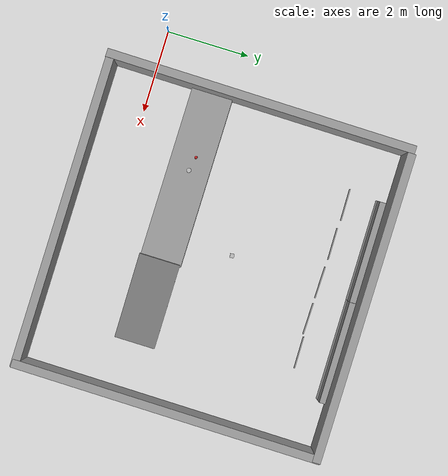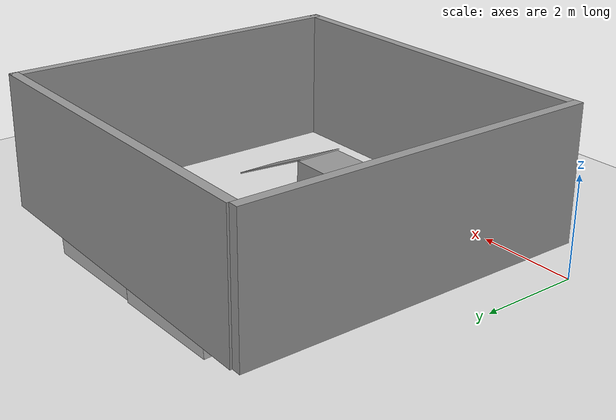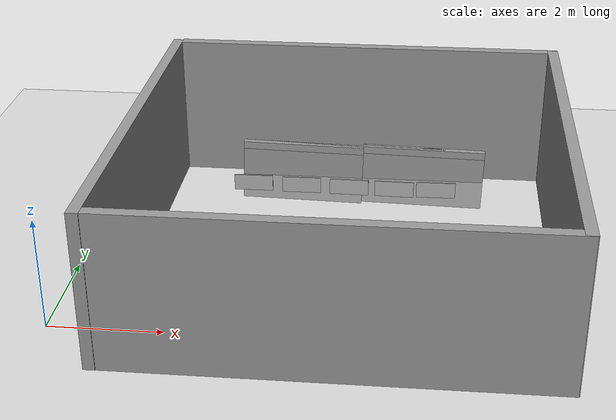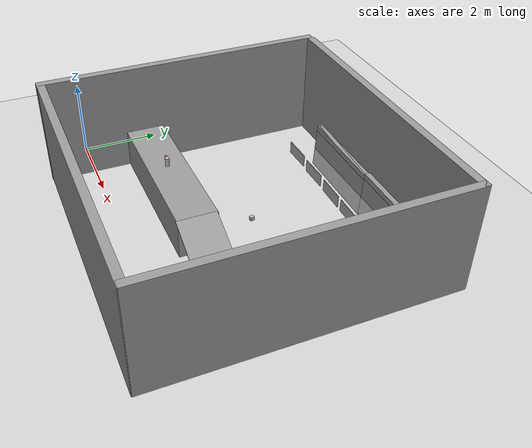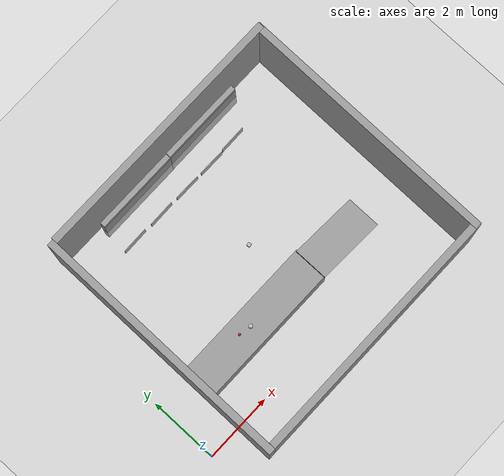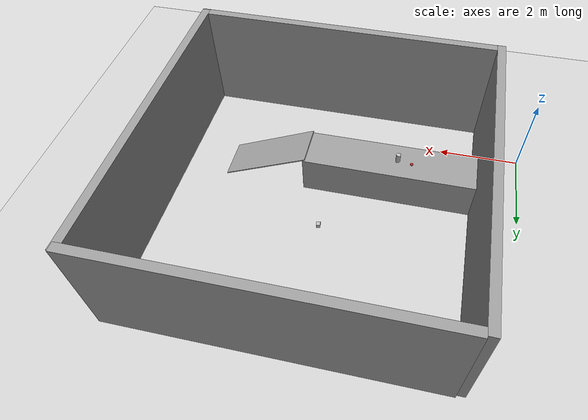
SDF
<sdf version="1.7">
 <world name="default">
  <light name="sun" type="directional">
   <pose>0 0 10 0 -0 0</pose>
   <diffuse>0.8 0.8 0.8 1</diffuse>
   <specular>0.2 0.2 0.2 1</specular>
   <attenuation>
    <range>1000</range>
    <constant>0.9</constant>
    <linear>0.01</linear>
    <quadratic>0.001</quadratic>
   </attenuation>
   <direction>-0.5 0.1 -0.9</direction>
   <spot><inner_angle>0</inner_angle><outer_angle>0</outer_angle><falloff>0</falloff></spot>
  </light>
  <model name="ground_plane">
   <static>1</static>
   <link name="link">
    <collision name="collision">
     <geometry><plane><normal>0 0 1</normal><size>100 100</size></plane></geometry>
     <surface><friction><ode><mu>100</mu><mu2>50</mu2></ode></friction></surface>
    </collision>
    <visual name="visual">
     <cast_shadows>0</cast_shadows>
     <geometry><plane><normal>0 0 1</normal><size>100 100</size></plane></geometry>
     <material>
      <script><uri>file://media/materials/scripts/gazebo.material</uri><name>Gazebo/Grey</name></script>
     </material>
    </visual>
   </link>
  </model>
  <gravity>0 0 -9.8</gravity>
  <magnetic_field>6e-06 2.3e-05 -4.2e-05</magnetic_field>
  <atmosphere type="adiabatic"/>
  <physics type="ode">
   <max_step_size>0.001</max_step_size>
   <real_time_factor>1</real_time_factor>
   <real_time_update_rate>1000</real_time_update_rate>
  </physics>
  <scene><ambient>0.4 0.4 0.4 1</ambient><background>0.7 0.7 0.7 1</background><shadows>1</shadows></scene>
  <audio><device>default</device></audio>
  <spherical_coordinates>
   <surface_model>EARTH_WGS84</surface_model>
   <latitude_deg>0</latitude_deg>
   <longitude_deg>0</longitude_deg>
   <elevation>0</elevation>
   <heading_deg>0</heading_deg>
  </spherical_coordinates>
  <model name="beer">
   <link name="link">
    <pose>0 0 0.115 0 -0 0</pose>
    <inertial>
     <mass>0.39</mass>
     <inertia><ixx>0.00058</ixx><ixy>0</ixy><ixz>0</ixz><iyy>0.00058</iyy><iyz>0</iyz><izz>0.00019</izz></inertia>
    </inertial>
    <collision name="collision">
     <geometry><cylinder><radius>0.055</radius><length>0.23</length></cylinder></geometry>
    </collision>
    <visual name="visual">
     <geometry><cylinder><radius>0.055</radius><length>0.23</length></cylinder></geometry>
     <material>
      <script>
       <uri>model://beer/materials/scripts</uri>
       <uri>model://beer/materials/textures</uri>
       <name>Beer/Diffuse</name>
      </script>
     </material>
    </visual>
   </link>
   <pose>3.05932 1.46997 1 -5.8e-05 -2.8e-05 2.5442</pose>
  </model>
  <model name="cricket_ball">
   <link name="link">
    <pose>0 0 0.0375 0 -0 0</pose>
    <inertial>
     <mass>0.1467</mass>
     <inertia>
      <ixx>8.25187e-05</ixx>
      <ixy>0</ixy>
      <ixz>0</ixz>
      <iyy>8.25187e-05</iyy>
      <iyz>0</iyz>
      <izz>8.25187e-05</izz>
     </inertia>
    </inertial>
    <collision name="collision">
     <geometry><sphere><radius>0.0375</radius></sphere></geometry>
     <surface>
      <contact>
       <poissons_ratio>0.347</poissons_ratio>
       <elastic_modulus>8.8e+09</elastic_modulus>
       <ode><kp>100000</kp><kd>100</kd><max_vel>100</max_vel><min_depth>0.001</min_depth></ode>
      </contact>
      <friction>
       <torsional>
        <coefficient>1</coefficient>
        <use_patch_radius>0</use_patch_radius>
        <surface_radius>0.01</surface_radius>
       </torsional>
      </friction>
     </surface>
    </collision>
    <visual name="visual">
     <geometry><sphere><radius>0.0375</radius></sphere></geometry>
     <material>
      <script><uri>file://media/materials/scripts/gazebo.material</uri><name>Gazebo/Red</name></script>
     </material>
    </visual>
    <velocity_decay><linear>0</linear><angular>0.005</angular></velocity_decay>
   </link>
   <pose>2.72731 1.5638 1.06393 2.39338 -0.27562 -0.706928</pose>
  </model>
  <model name="label_wall_0">
   <pose>2.3839 7.82373 0.019778 -2.10118 1.52018 -2.09374</pose>
   <link name="Wall_0">
    <collision name="Wall_0_Collision">
     <geometry><box><size>1.25 0.15 2.5</size></box></geometry>
     <pose>0 0 1.25 0 -0 0</pose>
    </collision>
    <visual name="Wall_0_Visual">
     <pose>0 0 1.25 0 -0 0</pose>
     <geometry><box><size>1.25 0.15 2.5</size></box></geometry>
     <material>
      <script><uri>file://media/materials/scripts/gazebo.material</uri><name>Gazebo/Grey</name></script>
      <ambient>1 1 1 1</ambient>
     </material>
     <meta><layer>0</layer></meta>
    </visual>
    <pose>-0 -1.7475 0 0 -0 3.14159</pose>
   </link>
   <link name="Wall_1">
    <collision name="Wall_1_Collision">
     <geometry><box><size>0.15 0.15 2.5</size></box></geometry>
     <pose>0 0 1.25 0 -0 0</pose>
    </collision>
    <visual name="Wall_1_Visual">
     <pose>0 0 1.25 0 -0 0</pose>
     <geometry><box><size>0.15 0.15 2.5</size></box></geometry>
     <material>
      <script><uri>file://media/materials/scripts/gazebo.material</uri><name>Gazebo/Grey</name></script>
      <ambient>1 1 1 1</ambient>
     </material>
     <meta><layer>0</layer></meta>
    </visual>
    <pose>-0.55 -1.7475 0 0 -0 0</pose>
   </link>
   <static>1</static>
  </model>
  <model name="grey_wall">
   <static>1</static>
   <link name="link">
    <pose>0 0 1.4 0 -0 0</pose>
    <collision name="collision"><geometry><box><size>7.5 0.2 2.8</size></box></geometry></collision>
    <visual name="visual">
     <cast_shadows>0</cast_shadows>
     <geometry><box><size>7.5 0.2 2.8</size></box></geometry>
     <material>
      <script>
       <uri>model://grey_wall/materials/scripts</uri>
       <uri>model://grey_wall/materials/textures</uri>
       <name>vrc/grey_wall</name>
      </script>
     </material>
    </visual>
   </link>
   <pose>4.93932 6.31191 0 0 -0 0</pose>
  </model>
  <model name="camera">
   <pose>4.68664 3.05018 0.049994 3.2e-05 -2.9e-05 1.70775</pose>
   <link name="link">
    <inertial>
     <mass>0.1</mass>
     <inertia>
      <ixx>0.000166667</ixx>
      <iyy>0.000166667</iyy>
      <izz>0.000166667</izz>
      <ixy>0</ixy>
      <ixz>0</ixz>
      <iyz>0</iyz>
     </inertia>
    </inertial>
    <collision name="collision"><geometry><box><size>0.1 0.1 0.1</size></box></geometry></collision>
    <visual name="visual"><geometry><box><size>0.1 0.1 0.1</size></box></geometry></visual>
    <sensor name="camera" type="camera">
     <camera>
      <horizontal_fov>1.047</horizontal_fov>
      <image><width>320</width><height>240</height></image>
      <clip><near>0.1</near><far>100</far></clip>
     </camera>
     <always_on>1</always_on>
     <update_rate>30</update_rate>
     <visualize>1</visualize>
     <plugin name="camera_controller" filename="libgazebo_ros_camera.so">
      <robotNamespace>/custom_robot</robotNamespace>
      <camera_name>custom_camera</camera_name>
      <image_topic_name>camera/image_raw</image_topic_name>
      <camera_info_topic_name>camera/camera_info</camera_info_topic_name>
     </plugin>
    </sensor>
   </link>
  </model>
  <model name="table_0">
   <link name="link_2">
    <inertial>
     <mass>4.15649</mass>
     <inertia><ixx>0.692749</ixx><ixy>0</ixy><ixz>0</ixz><iyy>6.3305</iyy><iyz>0</iyz><izz>6.3305</izz></inertia>
    </inertial>
    <pose>-1.53849 0.013601 -0.012814 0 -0 0</pose>
    <visual name="visual">
     <geometry><box><size>4.15649 1 1</size></box></geometry>
     <material>
      <lighting>1</lighting>
      <script><uri>file://media/materials/scripts/gazebo.material</uri><name>Gazebo/Grey</name></script>
      <shader type="pixel"/>
      <emissive>0 0 0 1</emissive>
     </material>
    </visual>
    <collision name="collision">
     <geometry><box><size>4.15649 1 1</size></box></geometry>
     <surface>
      <friction>
       <ode><mu>1</mu><mu2>1</mu2><fdir1>0 0 0</fdir1><slip1>0</slip1><slip2>0</slip2></ode>
       <torsional>
        <coefficient>1</coefficient>
        <patch_radius>0</patch_radius>
        <surface_radius>0</surface_radius>
        <use_patch_radius>1</use_patch_radius>
        <ode><slip>0</slip></ode>
       </torsional>
      </friction>
      <bounce><restitution_coefficient>0</restitution_coefficient><threshold>1e+06</threshold></bounce>
      <contact>
       <collide_without_contact>0</collide_without_contact>
       <collide_without_contact_bitmask>1</collide_without_contact_bitmask>
       <collide_bitmask>1</collide_bitmask>
       <ode>
        <soft_cfm>0</soft_cfm>
        <soft_erp>0.2</soft_erp>
        <kp>1e+13</kp>
        <kd>1</kd>
        <max_vel>0.01</max_vel>
        <min_depth>0</min_depth>
       </ode>
       <bullet>
        <split_impulse>1</split_impulse>
        <split_impulse_penetration_threshold>-0.01</split_impulse_penetration_threshold>
        <soft_cfm>0</soft_cfm>
        <soft_erp>0.2</soft_erp>
        <kp>1e+13</kp>
        <kd>1</kd>
       </bullet>
      </contact>
     </surface>
    </collision>
   </link>
   <link name="link_3">
    <inertial>
     <mass>0.064214</mass>
     <inertia>
      <ixx>0.00535527</ixx>
      <ixy>0</ixy>
      <ixz>0</ixz>
      <iyy>0.0289084</iyy>
      <iyz>0</iyz>
      <izz>0.0342555</izz>
     </inertia>
    </inertial>
    <pose>1.53849 -0.013605 0.012814 0 0.440179 0</pose>
    <visual name="visual">
     <geometry><box><size>2.32411 1 0.027691</size></box></geometry>
     <material>
      <lighting>1</lighting>
      <script><uri>file://media/materials/scripts/gazebo.material</uri><name>Gazebo/Grey</name></script>
      <shader type="pixel"/>
      <emissive>0 0 0 1</emissive>
     </material>
    </visual>
    <collision name="collision">
     <geometry><box><size>2.32411 1 0.027691</size></box></geometry>
     <surface>
      <friction>
       <ode><mu>1</mu><mu2>1</mu2><fdir1>0 0 0</fdir1><slip1>0</slip1><slip2>0</slip2></ode>
       <torsional>
        <coefficient>1</coefficient>
        <patch_radius>0</patch_radius>
        <surface_radius>0</surface_radius>
        <use_patch_radius>1</use_patch_radius>
        <ode><slip>0</slip></ode>
       </torsional>
      </friction>
      <bounce><restitution_coefficient>0</restitution_coefficient><threshold>1e+06</threshold></bounce>
      <contact>
       <collide_without_contact>0</collide_without_contact>
       <collide_without_contact_bitmask>1</collide_without_contact_bitmask>
       <collide_bitmask>1</collide_bitmask>
       <ode>
        <soft_cfm>0</soft_cfm>
        <soft_erp>0.2</soft_erp>
        <kp>1e+13</kp>
        <kd>1</kd>
        <max_vel>0.01</max_vel>
        <min_depth>0</min_depth>
       </ode>
       <bullet>
        <split_impulse>1</split_impulse>
        <split_impulse_penetration_threshold>-0.01</split_impulse_penetration_threshold>
        <soft_cfm>0</soft_cfm>
        <soft_erp>0.2</soft_erp>
        <kp>1e+13</kp>
        <kd>1</kd>
       </bullet>
      </contact>
     </surface>
    </collision>
   </link>
   <joint name="link_2_JOINT_1" type="fixed">
    <parent>link_2</parent>
    <child>link_3</child>
    <physics>
     <ode><limit><cfm>0</cfm><erp>0.2</erp></limit><suspension><cfm>0</cfm><erp>0.2</erp></suspension></ode>
    </physics>
   </joint>
   <static>0</static>
   <pose>4.78126 1.44647 0.51281 -8e-06 -0 -0.000275</pose>
  </model>
  <model name="label_wall_0_clone">
   <pose>4.88064 7.84317 0.001873 -2.10118 1.52018 -2.09374</pose>
   <link name="Wall_0">
    <collision name="Wall_0_Collision">
     <geometry><box><size>1.25 0.15 2.5</size></box></geometry>
     <pose>0 0 1.25 0 -0 0</pose>
    </collision>
    <visual name="Wall_0_Visual">
     <pose>0 0 1.25 0 -0 0</pose>
     <geometry><box><size>1.25 0.15 2.5</size></box></geometry>
     <material>
      <script><uri>file://media/materials/scripts/gazebo.material</uri><name>Gazebo/Grey</name></script>
      <ambient>1 1 1 1</ambient>
     </material>
     <meta><layer>0</layer></meta>
    </visual>
    <pose>-0 -1.7475 0 0 -0 3.14159</pose>
   </link>
   <link name="Wall_1">
    <collision name="Wall_1_Collision">
     <geometry><box><size>0.15 0.15 2.5</size></box></geometry>
     <pose>0 0 1.25 0 -0 0</pose>
    </collision>
    <visual name="Wall_1_Visual">
     <pose>0 0 1.25 0 -0 0</pose>
     <geometry><box><size>0.15 0.15 2.5</size></box></geometry>
     <material>
      <script><uri>file://media/materials/scripts/gazebo.material</uri><name>Gazebo/Grey</name></script>
      <ambient>1 1 1 1</ambient>
     </material>
     <meta><layer>0</layer></meta>
    </visual>
    <pose>-0.55 -1.7475 0 0 -0 0</pose>
   </link>
   <static>1</static>
  </model>
  <model name="grey_wall_clone">
   <static>1</static>
   <link name="link">
    <pose>0 0 1.4 0 -0 0</pose>
    <collision name="collision"><geometry><box><size>7.5 0.2 2.8</size></box></geometry></collision>
    <visual name="visual">
     <cast_shadows>0</cast_shadows>
     <geometry><box><size>7.5 0.2 2.8</size></box></geometry>
     <material>
      <script>
       <uri>model://grey_wall/materials/scripts</uri>
       <uri>model://grey_wall/materials/textures</uri>
       <name>vrc/grey_wall</name>
      </script>
     </material>
    </visual>
   </link>
   <pose>8.58538 2.64211 0 0 -0 1.56443</pose>
  </model>
  <model name="grey_wall_clone_0">
   <static>1</static>
   <link name="link">
    <pose>0 0 1.4 0 -0 0</pose>
    <collision name="collision"><geometry><box><size>7.5 0.2 2.8</size></box></geometry></collision>
    <visual name="visual">
     <cast_shadows>0</cast_shadows>
     <geometry><box><size>7.5 0.2 2.8</size></box></geometry>
     <material>
      <script>
       <uri>model://grey_wall/materials/scripts</uri>
       <uri>model://grey_wall/materials/textures</uri>
       <name>vrc/grey_wall</name>
      </script>
     </material>
    </visual>
   </link>
   <pose>4.89689 -1.02659 0 0 -0 0</pose>
  </model>
  <model name="grey_wall_clone_clone">
   <static>1</static>
   <link name="link">
    <pose>0 0 1.4 0 -0 0</pose>
    <collision name="collision"><geometry><box><size>7.5 0.2 2.8</size></box></geometry></collision>
    <visual name="visual">
     <cast_shadows>0</cast_shadows>
     <geometry><box><size>7.5 0.2 2.8</size></box></geometry>
     <material>
      <script>
       <uri>model://grey_wall/materials/scripts</uri>
       <uri>model://grey_wall/materials/textures</uri>
       <name>vrc/grey_wall</name>
      </script>
     </material>
    </visual>
   </link>
   <pose>1.06851 2.61746 0 0 -0 1.56443</pose>
  </model>
  <model name="bottle">
   <link name="link_0">
    <inertial>
     <mass>0.00537819</mass>
     <inertia>
      <ixx>4.91369e-05</ixx>
      <ixy>0</ixy>
      <ixz>0</ixz>
      <iyy>0.000322519</iyy>
      <iyz>0</iyz>
      <izz>0.000273773</izz>
     </inertia>
    </inertial>
    <pose>-0 1e-06 0 0 -0 0</pose>
    <visual name="visual">
     <geometry><box><size>0.781291 0.020861 0.330455</size></box></geometry>
     <material>
      <lighting>1</lighting>
      <script>
       <uri>model://bottle/materials/scripts</uri>
       <uri>model://bottle/materials/textures</uri>
       <name>Bottle/Bottle</name>
      </script>
      <shader type="pixel"/>
     </material>
    </visual>
    <collision name="collision">
     <geometry><box><size>0.781291 0.020861 0.330455</size></box></geometry>
     <surface>
      <friction>
       <ode><mu>1</mu><mu2>1</mu2><fdir1>0 0 0</fdir1><slip1>0</slip1><slip2>0</slip2></ode>
       <torsional>
        <coefficient>1</coefficient>
        <patch_radius>0</patch_radius>
        <surface_radius>0</surface_radius>
        <use_patch_radius>1</use_patch_radius>
        <ode><slip>0</slip></ode>
       </torsional>
      </friction>
      <bounce><restitution_coefficient>0</restitution_coefficient><threshold>1e+06</threshold></bounce>
      <contact>
       <collide_without_contact>0</collide_without_contact>
       <collide_without_contact_bitmask>1</collide_without_contact_bitmask>
       <collide_bitmask>1</collide_bitmask>
       <ode>
        <soft_cfm>0</soft_cfm>
        <soft_erp>0.2</soft_erp>
        <kp>1e+13</kp>
        <kd>1</kd>
        <max_vel>0.01</max_vel>
        <min_depth>0</min_depth>
       </ode>
       <bullet>
        <split_impulse>1</split_impulse>
        <split_impulse_penetration_threshold>-0.01</split_impulse_penetration_threshold>
        <soft_cfm>0</soft_cfm>
        <soft_erp>0.2</soft_erp>
        <kp>1e+13</kp>
        <kd>1</kd>
       </bullet>
      </contact>
     </surface>
    </collision>
   </link>
   <static>0</static>
   <pose>2.71897 5.28071 0.165224 -1e-06 -1e-05 0.017618</pose>
  </model>
  <model name="can">
   <link name="link_0">
    <inertial>
     <mass>0.00537819</mass>
     <inertia>
      <ixx>4.91369e-05</ixx>
      <ixy>0</ixy>
      <ixz>0</ixz>
      <iyy>0.000322519</iyy>
      <iyz>0</iyz>
      <izz>0.000273773</izz>
     </inertia>
    </inertial>
    <pose>-0 1e-06 0 0 -0 0</pose>
    <visual name="visual">
     <geometry><box><size>0.781291 0.020861 0.330455</size></box></geometry>
     <material>
      <lighting>1</lighting>
      <script>
       <uri>model://can/materials/scripts</uri>
       <uri>model://can/materials/textures</uri>
       <name>Can/Can</name>
      </script>
      <shader type="pixel"/>
     </material>
    </visual>
    <collision name="collision">
     <geometry><box><size>0.781291 0.020861 0.330455</size></box></geometry>
     <surface>
      <friction>
       <ode><mu>1</mu><mu2>1</mu2><fdir1>0 0 0</fdir1><slip1>0</slip1><slip2>0</slip2></ode>
       <torsional>
        <coefficient>1</coefficient>
        <patch_radius>0</patch_radius>
        <surface_radius>0</surface_radius>
        <use_patch_radius>1</use_patch_radius>
        <ode><slip>0</slip></ode>
       </torsional>
      </friction>
      <bounce><restitution_coefficient>0</restitution_coefficient><threshold>1e+06</threshold></bounce>
      <contact>
       <collide_without_contact>0</collide_without_contact>
       <collide_without_contact_bitmask>1</collide_without_contact_bitmask>
       <collide_bitmask>1</collide_bitmask>
       <ode>
        <soft_cfm>0</soft_cfm>
        <soft_erp>0.2</soft_erp>
        <kp>1e+13</kp>
        <kd>1</kd>
        <max_vel>0.01</max_vel>
        <min_depth>0</min_depth>
       </ode>
       <bullet>
        <split_impulse>1</split_impulse>
        <split_impulse_penetration_threshold>-0.01</split_impulse_penetration_threshold>
        <soft_cfm>0</soft_cfm>
        <soft_erp>0.2</soft_erp>
        <kp>1e+13</kp>
        <kd>1</kd>
       </bullet>
      </contact>
     </surface>
    </collision>
   </link>
   <static>0</static>
   <pose>3.70454 5.26556 0.165224 -1e-06 -1e-05 0.015801</pose>
  </model>
  <model name="paper">
   <link name="link_0">
    <inertial>
     <mass>0.00537819</mass>
     <inertia>
      <ixx>4.91369e-05</ixx>
      <ixy>0</ixy>
      <ixz>0</ixz>
      <iyy>0.000322519</iyy>
      <iyz>0</iyz>
      <izz>0.000273773</izz>
     </inertia>
    </inertial>
    <pose>-0 1e-06 0 0 -0 0</pose>
    <visual name="visual">
     <geometry><box><size>0.781291 0.020861 0.330455</size></box></geometry>
     <material>
      <lighting>1</lighting>
      <script>
       <uri>model://paper/materials/scripts</uri>
       <uri>model://paper/materials/textures</uri>
       <name>Paper/Paper</name>
      </script>
      <shader type="pixel"/>
     </material>
    </visual>
    <collision name="collision">
     <geometry><box><size>0.781291 0.020861 0.330455</size></box></geometry>
     <surface>
      <friction>
       <ode><mu>1</mu><mu2>1</mu2><fdir1>0 0 0</fdir1><slip1>0</slip1><slip2>0</slip2></ode>
       <torsional>
        <coefficient>1</coefficient>
        <patch_radius>0</patch_radius>
        <surface_radius>0</surface_radius>
        <use_patch_radius>1</use_patch_radius>
        <ode><slip>0</slip></ode>
       </torsional>
      </friction>
      <bounce><restitution_coefficient>0</restitution_coefficient><threshold>1e+06</threshold></bounce>
      <contact>
       <collide_without_contact>0</collide_without_contact>
       <collide_without_contact_bitmask>1</collide_without_contact_bitmask>
       <collide_bitmask>1</collide_bitmask>
       <ode>
        <soft_cfm>0</soft_cfm>
        <soft_erp>0.2</soft_erp>
        <kp>1e+13</kp>
        <kd>1</kd>
        <max_vel>0.01</max_vel>
        <min_depth>0</min_depth>
       </ode>
       <bullet>
        <split_impulse>1</split_impulse>
        <split_impulse_penetration_threshold>-0.01</split_impulse_penetration_threshold>
        <soft_cfm>0</soft_cfm>
        <soft_erp>0.2</soft_erp>
        <kp>1e+13</kp>
        <kd>1</kd>
       </bullet>
      </contact>
     </surface>
    </collision>
   </link>
   <static>0</static>
   <pose>4.67384 5.24989 0.165224 1e-06 -1e-05 -0.015737</pose>
  </model>
  <model name="plastic">
   <link name="link_0">
    <inertial>
     <mass>0.00537819</mass>
     <inertia>
      <ixx>4.91369e-05</ixx>
      <ixy>0</ixy>
      <ixz>0</ixz>
      <iyy>0.000322519</iyy>
      <iyz>0</iyz>
      <izz>0.000273773</izz>
     </inertia>
    </inertial>
    <pose>-0 1e-06 0 0 -0 0</pose>
    <visual name="visual">
     <geometry><box><size>0.781291 0.020861 0.330455</size></box></geometry>
     <material>
      <lighting>1</lighting>
      <script>
       <uri>model://plastic/materials/scripts</uri>
       <uri>model://plastic/materials/textures</uri>
       <name>Plastic/Plastic</name>
      </script>
      <shader type="pixel"/>
     </material>
    </visual>
    <collision name="collision">
     <geometry><box><size>0.781291 0.020861 0.330455</size></box></geometry>
     <surface>
      <friction>
       <ode><mu>1</mu><mu2>1</mu2><fdir1>0 0 0</fdir1><slip1>0</slip1><slip2>0</slip2></ode>
       <torsional>
        <coefficient>1</coefficient>
        <patch_radius>0</patch_radius>
        <surface_radius>0</surface_radius>
        <use_patch_radius>1</use_patch_radius>
        <ode><slip>0</slip></ode>
       </torsional>
      </friction>
      <bounce><restitution_coefficient>0</restitution_coefficient><threshold>1e+06</threshold></bounce>
      <contact>
       <collide_without_contact>0</collide_without_contact>
       <collide_without_contact_bitmask>1</collide_without_contact_bitmask>
       <collide_bitmask>1</collide_bitmask>
       <ode>
        <soft_cfm>0</soft_cfm>
        <soft_erp>0.2</soft_erp>
        <kp>1e+13</kp>
        <kd>1</kd>
        <max_vel>0.01</max_vel>
        <min_depth>0</min_depth>
       </ode>
       <bullet>
        <split_impulse>1</split_impulse>
        <split_impulse_penetration_threshold>-0.01</split_impulse_penetration_threshold>
        <soft_cfm>0</soft_cfm>
        <soft_erp>0.2</soft_erp>
        <kp>1e+13</kp>
        <kd>1</kd>
       </bullet>
      </contact>
     </surface>
    </collision>
   </link>
   <static>0</static>
   <pose>5.58601 5.23563 0.165224 -1e-06 1e-05 -0.013979</pose>
  </model>
  <model name="vinyl">
   <link name="link_0">
    <inertial>
     <mass>0.00537819</mass>
     <inertia>
      <ixx>4.91369e-05</ixx>
      <ixy>0</ixy>
      <ixz>0</ixz>
      <iyy>0.000322519</iyy>
      <iyz>0</iyz>
      <izz>0.000273773</izz>
     </inertia>
    </inertial>
    <pose>-0 1e-06 0 0 -0 0</pose>
    <visual name="visual">
     <geometry><box><size>0.781291 0.020861 0.330455</size></box></geometry>
     <material>
      <lighting>1</lighting>
      <script>
       <uri>model://vinyl/materials/scripts</uri>
       <uri>model://vinyl/materials/textures</uri>
       <name>Vinyl/Label</name>
      </script>
      <shader type="pixel"/>
     </material>
    </visual>
    <collision name="collision">
     <geometry><box><size>0.781291 0.020861 0.330455</size></box></geometry>
     <surface>
      <friction>
       <ode><mu>1</mu><mu2>1</mu2><fdir1>0 0 0</fdir1><slip1>0</slip1><slip2>0</slip2></ode>
       <torsional>
        <coefficient>1</coefficient>
        <patch_radius>0</patch_radius>
        <surface_radius>0</surface_radius>
        <use_patch_radius>1</use_patch_radius>
        <ode><slip>0</slip></ode>
       </torsional>
      </friction>
      <bounce><restitution_coefficient>0</restitution_coefficient><threshold>1e+06</threshold></bounce>
      <contact>
       <collide_without_contact>0</collide_without_contact>
       <collide_without_contact_bitmask>1</collide_without_contact_bitmask>
       <collide_bitmask>1</collide_bitmask>
       <ode>
        <soft_cfm>0</soft_cfm>
        <soft_erp>0.2</soft_erp>
        <kp>1e+13</kp>
        <kd>1</kd>
        <max_vel>0.01</max_vel>
        <min_depth>0</min_depth>
       </ode>
       <bullet>
        <split_impulse>1</split_impulse>
        <split_impulse_penetration_threshold>-0.01</split_impulse_penetration_threshold>
        <soft_cfm>0</soft_cfm>
        <soft_erp>0.2</soft_erp>
        <kp>1e+13</kp>
        <kd>1</kd>
       </bullet>
      </contact>
     </surface>
    </collision>
   </link>
   <static>0</static>
   <pose>6.42388 5.26482 0.165224 -1e-06 -1e-05 0.013984</pose>
  </model>
 </world>
</sdf>
